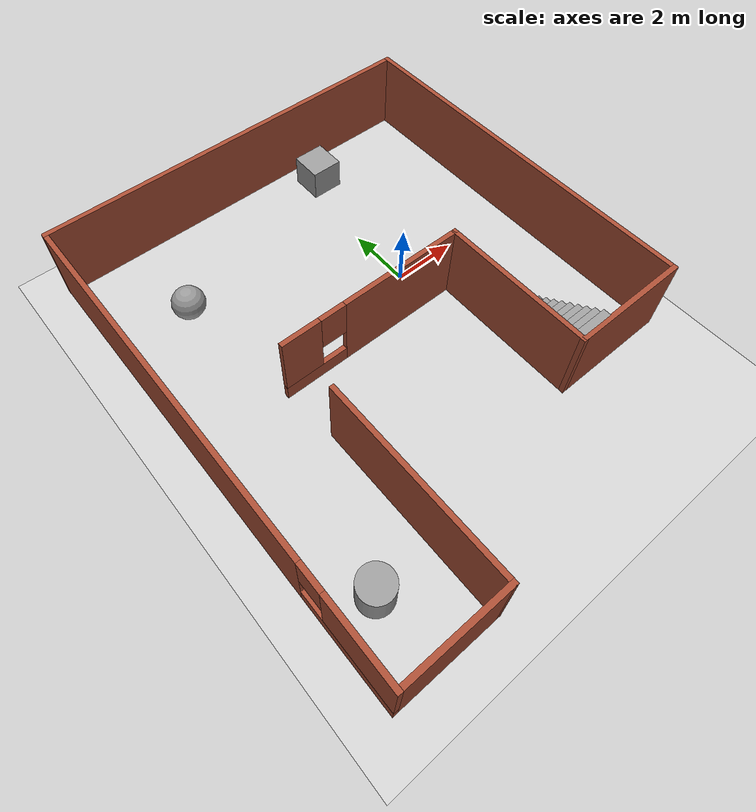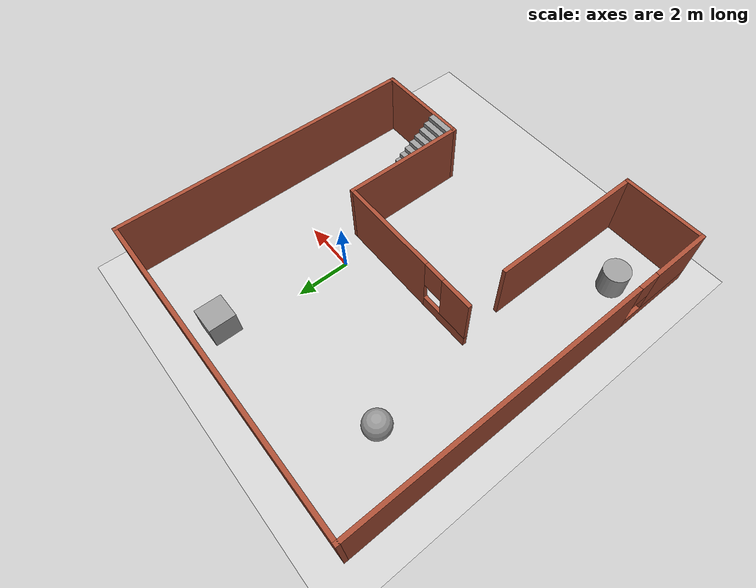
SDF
<sdf version="1.7">
 <world name="default">
  <light name="sun" type="directional">
   <pose>0 0 10 0 -0 0</pose>
   <diffuse>0.8 0.8 0.8 1</diffuse>
   <specular>0.2 0.2 0.2 1</specular>
   <attenuation>
    <range>1000</range>
    <constant>0.9</constant>
    <linear>0.01</linear>
    <quadratic>0.001</quadratic>
   </attenuation>
   <direction>-0.5 0.1 -0.9</direction>
   <spot><inner_angle>0</inner_angle><outer_angle>0</outer_angle><falloff>0</falloff></spot>
  </light>
  <model name="ground_plane">
   <static>1</static>
   <link name="link">
    <collision name="collision">
     <geometry><plane><normal>0 0 1</normal><size>100 100</size></plane></geometry>
     <surface><friction><ode><mu>100</mu><mu2>50</mu2></ode></friction></surface>
    </collision>
    <visual name="visual">
     <cast_shadows>0</cast_shadows>
     <geometry><plane><normal>0 0 1</normal><size>100 100</size></plane></geometry>
     <material>
      <script><uri>file://media/materials/scripts/gazebo.material</uri><name>Gazebo/Grey</name></script>
     </material>
    </visual>
   </link>
  </model>
  <gravity>0 0 -9.8</gravity>
  <magnetic_field>6e-06 2.3e-05 -4.2e-05</magnetic_field>
  <atmosphere type="adiabatic"/>
  <physics type="ode">
   <max_step_size>0.001</max_step_size>
   <real_time_factor>1</real_time_factor>
   <real_time_update_rate>1000</real_time_update_rate>
  </physics>
  <scene><ambient>0.4 0.4 0.4 1</ambient><background>0.7 0.7 0.7 1</background><shadows>1</shadows></scene>
  <audio><device>default</device></audio>
  <spherical_coordinates>
   <surface_model>EARTH_WGS84</surface_model>
   <latitude_deg>0</latitude_deg>
   <longitude_deg>0</longitude_deg>
   <elevation>0</elevation>
   <heading_deg>0</heading_deg>
  </spherical_coordinates>
  <model name="demo1_world">
   <pose>-1.75891 -1.44659 0 0 -0 0</pose>
   <link name="Stairs_0">
    <visual name="Stairs_0_Visual_0">
     <pose>3.14707 -0.863683 0.083333 0 -0 0</pose>
     <geometry><box><size>1 0.233333 0.166667</size></box></geometry>
     <material>
      <script><uri>file://media/materials/scripts/gazebo.material</uri><name>Gazebo/Grey</name></script>
      <ambient>1 1 1 1</ambient>
     </material>
     <meta><layer>0</layer></meta>
    </visual>
    <collision name="Stairs_0_Collision_0">
     <geometry><box><size>1 0.233333 0.166667</size></box></geometry>
     <pose>3.14707 -0.863683 0.083333 0 -0 0</pose>
    </collision>
    <visual name="Stairs_0_Visual_1">
     <pose>3.14707 -1.09702 0.25 0 -0 0</pose>
     <geometry><box><size>1 0.233333 0.166667</size></box></geometry>
     <material>
      <script><uri>file://media/materials/scripts/gazebo.material</uri><name>Gazebo/Grey</name></script>
      <ambient>1 1 1 1</ambient>
     </material>
     <meta><layer>0</layer></meta>
    </visual>
    <collision name="Stairs_0_Collision_1">
     <geometry><box><size>1 0.233333 0.166667</size></box></geometry>
     <pose>3.14707 -1.09702 0.25 0 -0 0</pose>
    </collision>
    <visual name="Stairs_0_Visual_2">
     <pose>3.14707 -1.33035 0.416667 0 -0 0</pose>
     <geometry><box><size>1 0.233333 0.166667</size></box></geometry>
     <material>
      <script><uri>file://media/materials/scripts/gazebo.material</uri><name>Gazebo/Grey</name></script>
      <ambient>1 1 1 1</ambient>
     </material>
     <meta><layer>0</layer></meta>
    </visual>
    <collision name="Stairs_0_Collision_2">
     <geometry><box><size>1 0.233333 0.166667</size></box></geometry>
     <pose>3.14707 -1.33035 0.416667 0 -0 0</pose>
    </collision>
    <visual name="Stairs_0_Visual_3">
     <pose>3.14707 -1.56368 0.583333 0 -0 0</pose>
     <geometry><box><size>1 0.233333 0.166667</size></box></geometry>
     <material>
      <script><uri>file://media/materials/scripts/gazebo.material</uri><name>Gazebo/Grey</name></script>
      <ambient>1 1 1 1</ambient>
     </material>
     <meta><layer>0</layer></meta>
    </visual>
    <collision name="Stairs_0_Collision_3">
     <geometry><box><size>1 0.233333 0.166667</size></box></geometry>
     <pose>3.14707 -1.56368 0.583333 0 -0 0</pose>
    </collision>
    <visual name="Stairs_0_Visual_4">
     <pose>3.14707 -1.79702 0.75 0 -0 0</pose>
     <geometry><box><size>1 0.233333 0.166667</size></box></geometry>
     <material>
      <script><uri>file://media/materials/scripts/gazebo.material</uri><name>Gazebo/Grey</name></script>
      <ambient>1 1 1 1</ambient>
     </material>
     <meta><layer>0</layer></meta>
    </visual>
    <collision name="Stairs_0_Collision_4">
     <geometry><box><size>1 0.233333 0.166667</size></box></geometry>
     <pose>3.14707 -1.79702 0.75 0 -0 0</pose>
    </collision>
    <visual name="Stairs_0_Visual_5">
     <pose>3.14707 -2.03035 0.916667 0 -0 0</pose>
     <geometry><box><size>1 0.233333 0.166667</size></box></geometry>
     <material>
      <script><uri>file://media/materials/scripts/gazebo.material</uri><name>Gazebo/Grey</name></script>
      <ambient>1 1 1 1</ambient>
     </material>
     <meta><layer>0</layer></meta>
    </visual>
    <collision name="Stairs_0_Collision_5">
     <geometry><box><size>1 0.233333 0.166667</size></box></geometry>
     <pose>3.14707 -2.03035 0.916667 0 -0 0</pose>
    </collision>
    <visual name="Stairs_0_Visual_6">
     <pose>3.14707 -2.26368 1.08333 0 -0 0</pose>
     <geometry><box><size>1 0.233333 0.166667</size></box></geometry>
     <material>
      <script><uri>file://media/materials/scripts/gazebo.material</uri><name>Gazebo/Grey</name></script>
      <ambient>1 1 1 1</ambient>
     </material>
     <meta><layer>0</layer></meta>
    </visual>
    <collision name="Stairs_0_Collision_6">
     <geometry><box><size>1 0.233333 0.166667</size></box></geometry>
     <pose>3.14707 -2.26368 1.08333 0 -0 0</pose>
    </collision>
    <visual name="Stairs_0_Visual_7">
     <pose>3.14707 -2.49702 1.25 0 -0 0</pose>
     <geometry><box><size>1 0.233333 0.166667</size></box></geometry>
     <material>
      <script><uri>file://media/materials/scripts/gazebo.material</uri><name>Gazebo/Grey</name></script>
      <ambient>1 1 1 1</ambient>
     </material>
     <meta><layer>0</layer></meta>
    </visual>
    <collision name="Stairs_0_Collision_7">
     <geometry><box><size>1 0.233333 0.166667</size></box></geometry>
     <pose>3.14707 -2.49702 1.25 0 -0 0</pose>
    </collision>
    <visual name="Stairs_0_Visual_8">
     <pose>3.14707 -2.73035 1.41667 0 -0 0</pose>
     <geometry><box><size>1 0.233333 0.166667</size></box></geometry>
     <material>
      <script><uri>file://media/materials/scripts/gazebo.material</uri><name>Gazebo/Grey</name></script>
      <ambient>1 1 1 1</ambient>
     </material>
     <meta><layer>0</layer></meta>
    </visual>
    <collision name="Stairs_0_Collision_8">
     <geometry><box><size>1 0.233333 0.166667</size></box></geometry>
     <pose>3.14707 -2.73035 1.41667 0 -0 0</pose>
    </collision>
    <visual name="Stairs_0_Visual_9">
     <pose>3.14707 -2.96368 1.58333 0 -0 0</pose>
     <geometry><box><size>1 0.233333 0.166667</size></box></geometry>
     <material>
      <script><uri>file://media/materials/scripts/gazebo.material</uri><name>Gazebo/Grey</name></script>
      <ambient>1 1 1 1</ambient>
     </material>
     <meta><layer>0</layer></meta>
    </visual>
    <collision name="Stairs_0_Collision_9">
     <geometry><box><size>1 0.233333 0.166667</size></box></geometry>
     <pose>3.14707 -2.96368 1.58333 0 -0 0</pose>
    </collision>
    <visual name="Stairs_0_Visual_10">
     <pose>3.14707 -3.19702 1.75 0 -0 0</pose>
     <geometry><box><size>1 0.233333 0.166667</size></box></geometry>
     <material>
      <script><uri>file://media/materials/scripts/gazebo.material</uri><name>Gazebo/Grey</name></script>
      <ambient>1 1 1 1</ambient>
     </material>
     <meta><layer>0</layer></meta>
    </visual>
    <collision name="Stairs_0_Collision_10">
     <geometry><box><size>1 0.233333 0.166667</size></box></geometry>
     <pose>3.14707 -3.19702 1.75 0 -0 0</pose>
    </collision>
    <visual name="Stairs_0_Visual_11">
     <pose>3.14707 -3.43035 1.91667 0 -0 0</pose>
     <geometry><box><size>1 0.233333 0.166667</size></box></geometry>
     <material>
      <script><uri>file://media/materials/scripts/gazebo.material</uri><name>Gazebo/Grey</name></script>
      <ambient>1 1 1 1</ambient>
     </material>
     <meta><layer>0</layer></meta>
    </visual>
    <collision name="Stairs_0_Collision_11">
     <geometry><box><size>1 0.233333 0.166667</size></box></geometry>
     <pose>3.14707 -3.43035 1.91667 0 -0 0</pose>
    </collision>
    <visual name="Stairs_0_Visual_12">
     <pose>3.14707 -3.66368 2.08333 0 -0 0</pose>
     <geometry><box><size>1 0.233333 0.166667</size></box></geometry>
     <material>
      <script><uri>file://media/materials/scripts/gazebo.material</uri><name>Gazebo/Grey</name></script>
      <ambient>1 1 1 1</ambient>
     </material>
     <meta><layer>0</layer></meta>
    </visual>
    <collision name="Stairs_0_Collision_12">
     <geometry><box><size>1 0.233333 0.166667</size></box></geometry>
     <pose>3.14707 -3.66368 2.08333 0 -0 0</pose>
    </collision>
    <visual name="Stairs_0_Visual_13">
     <pose>3.14707 -3.89702 2.25 0 -0 0</pose>
     <geometry><box><size>1 0.233333 0.166667</size></box></geometry>
     <material>
      <script><uri>file://media/materials/scripts/gazebo.material</uri><name>Gazebo/Grey</name></script>
      <ambient>1 1 1 1</ambient>
     </material>
     <meta><layer>0</layer></meta>
    </visual>
    <collision name="Stairs_0_Collision_13">
     <geometry><box><size>1 0.233333 0.166667</size></box></geometry>
     <pose>3.14707 -3.89702 2.25 0 -0 0</pose>
    </collision>
    <visual name="Stairs_0_Visual_14">
     <pose>3.14707 -4.13035 2.41667 0 -0 0</pose>
     <geometry><box><size>1 0.233333 0.166667</size></box></geometry>
     <material>
      <script><uri>file://media/materials/scripts/gazebo.material</uri><name>Gazebo/Grey</name></script>
      <ambient>1 1 1 1</ambient>
     </material>
     <meta><layer>0</layer></meta>
    </visual>
    <collision name="Stairs_0_Collision_14">
     <geometry><box><size>1 0.233333 0.166667</size></box></geometry>
     <pose>3.14707 -4.13035 2.41667 0 -0 0</pose>
    </collision>
   </link>
   <link name="Wall_27">
    <collision name="Wall_27_Collision">
     <geometry><box><size>12.5 0.15 2.5</size></box></geometry>
     <pose>0 0 1.25 0 -0 0</pose>
    </collision>
    <visual name="Wall_27_Visual">
     <pose>0 0 1.25 0 -0 0</pose>
     <geometry><box><size>12.5 0.15 2.5</size></box></geometry>
     <material>
      <script><uri>file://media/materials/scripts/gazebo.material</uri><name>Gazebo/Bricks</name></script>
      <ambient>1 1 1 1</ambient>
     </material>
     <meta><layer>0</layer></meta>
    </visual>
    <pose>0 7.3 0 0 -0 0</pose>
   </link>
   <link name="Wall_28">
    <collision name="Wall_28_Collision">
     <geometry><box><size>11.75 0.15 2.5</size></box></geometry>
     <pose>0 0 1.25 0 -0 0</pose>
    </collision>
    <visual name="Wall_28_Visual">
     <pose>0 0 1.25 0 -0 0</pose>
     <geometry><box><size>11.75 0.15 2.5</size></box></geometry>
     <material>
      <script><uri>file://media/materials/scripts/gazebo.material</uri><name>Gazebo/Bricks</name></script>
      <ambient>1 1 1 1</ambient>
     </material>
     <meta><layer>0</layer></meta>
    </visual>
    <pose>6.175 1.5 0 0 -0 -1.5708</pose>
   </link>
   <link name="Wall_29">
    <collision name="Wall_29_Collision">
     <geometry><box><size>3.75 0.15 2.5</size></box></geometry>
     <pose>0 0 1.25 0 -0 0</pose>
    </collision>
    <visual name="Wall_29_Visual">
     <pose>0 0 1.25 0 -0 0</pose>
     <geometry><box><size>3.75 0.15 2.5</size></box></geometry>
     <material>
      <script><uri>file://media/materials/scripts/gazebo.material</uri><name>Gazebo/Bricks</name></script>
      <ambient>1 1 1 1</ambient>
     </material>
     <meta><layer>0</layer></meta>
    </visual>
    <pose>4.375 -4.3 0 0 -0 3.14159</pose>
   </link>
   <link name="Wall_30">
    <collision name="Wall_30_Collision">
     <geometry><box><size>4.75 0.15 2.5</size></box></geometry>
     <pose>0 0 1.25 0 -0 0</pose>
    </collision>
    <visual name="Wall_30_Visual">
     <pose>0 0 1.25 0 -0 0</pose>
     <geometry><box><size>4.75 0.15 2.5</size></box></geometry>
     <material>
      <script><uri>file://media/materials/scripts/gazebo.material</uri><name>Gazebo/Bricks</name></script>
      <ambient>1 1 1 1</ambient>
     </material>
     <meta><layer>0</layer></meta>
    </visual>
    <pose>2.575 -2 0 0 -0 1.5708</pose>
   </link>
   <link name="Wall_31">
    <pose>-0.35 0.3 0 0 -0 3.14159</pose>
    <visual name="Wall_31_Visual_0">
     <pose>-1.01462 0 1.25 0 -0 0</pose>
     <geometry><box><size>3.97077 0.15 2.5</size></box></geometry>
     <material>
      <script><uri>file://media/materials/scripts/gazebo.material</uri><name>Gazebo/Bricks</name></script>
      <ambient>1 1 1 1</ambient>
     </material>
     <meta><layer>0</layer></meta>
    </visual>
    <collision name="Wall_31_Collision_0">
     <geometry><box><size>3.97077 0.15 2.5</size></box></geometry>
     <pose>-1.01462 0 1.25 0 -0 0</pose>
    </collision>
    <visual name="Wall_31_Visual_1">
     <pose>1.98538 0 0.25 0 -0 0</pose>
     <geometry><box><size>2.02923 0.15 0.5</size></box></geometry>
     <material>
      <script><uri>file://media/materials/scripts/gazebo.material</uri><name>Gazebo/Bricks</name></script>
      <ambient>1 1 1 1</ambient>
     </material>
     <meta><layer>0</layer></meta>
    </visual>
    <collision name="Wall_31_Collision_1">
     <geometry><box><size>2.02923 0.15 0.5</size></box></geometry>
     <pose>1.98538 0 0.25 0 -0 0</pose>
    </collision>
    <visual name="Wall_31_Visual_2">
     <pose>2.38538 0 1.5 0 -0 0</pose>
     <geometry><box><size>1.22923 0.15 2</size></box></geometry>
     <material>
      <script><uri>file://media/materials/scripts/gazebo.material</uri><name>Gazebo/Bricks</name></script>
      <ambient>1 1 1 1</ambient>
     </material>
     <meta><layer>0</layer></meta>
    </visual>
    <collision name="Wall_31_Collision_2">
     <geometry><box><size>1.22923 0.15 2</size></box></geometry>
     <pose>2.38538 0 1.5 0 -0 0</pose>
    </collision>
    <visual name="Wall_31_Visual_3">
     <pose>1.37077 0 1.9 0 -0 0</pose>
     <geometry><box><size>0.8 0.15 1.2</size></box></geometry>
     <material>
      <script><uri>file://media/materials/scripts/gazebo.material</uri><name>Gazebo/Bricks</name></script>
      <ambient>1 1 1 1</ambient>
     </material>
     <meta><layer>0</layer></meta>
    </visual>
    <collision name="Wall_31_Collision_3">
     <geometry><box><size>0.8 0.15 1.2</size></box></geometry>
     <pose>1.37077 0 1.9 0 -0 0</pose>
    </collision>
   </link>
   <link name="Wall_33">
    <pose>-6.175 -0 0 0 -0 -1.5708</pose>
    <visual name="Wall_33_Visual_0">
     <pose>-1.58828 0 1.25 0 -0 0</pose>
     <geometry><box><size>11.5734 0.15 2.5</size></box></geometry>
     <material>
      <script><uri>file://media/materials/scripts/gazebo.material</uri><name>Gazebo/Bricks</name></script>
      <ambient>1 1 1 1</ambient>
     </material>
     <meta><layer>0</layer></meta>
    </visual>
    <collision name="Wall_33_Collision_0">
     <geometry><box><size>11.5734 0.15 2.5</size></box></geometry>
     <pose>-1.58828 0 1.25 0 -0 0</pose>
    </collision>
    <visual name="Wall_33_Visual_1">
     <pose>5.78672 0 0.25 0 -0 0</pose>
     <geometry><box><size>3.17657 0.15 0.5</size></box></geometry>
     <material>
      <script><uri>file://media/materials/scripts/gazebo.material</uri><name>Gazebo/Bricks</name></script>
      <ambient>1 1 1 1</ambient>
     </material>
     <meta><layer>0</layer></meta>
    </visual>
    <collision name="Wall_33_Collision_1">
     <geometry><box><size>3.17657 0.15 0.5</size></box></geometry>
     <pose>5.78672 0 0.25 0 -0 0</pose>
    </collision>
    <visual name="Wall_33_Visual_2">
     <pose>6.18672 0 1.5 0 -0 0</pose>
     <geometry><box><size>2.37657 0.15 2</size></box></geometry>
     <material>
      <script><uri>file://media/materials/scripts/gazebo.material</uri><name>Gazebo/Bricks</name></script>
      <ambient>1 1 1 1</ambient>
     </material>
     <meta><layer>0</layer></meta>
    </visual>
    <collision name="Wall_33_Collision_2">
     <geometry><box><size>2.37657 0.15 2</size></box></geometry>
     <pose>6.18672 0 1.5 0 -0 0</pose>
    </collision>
    <visual name="Wall_33_Visual_3">
     <pose>4.59843 0 1.9 0 -0 0</pose>
     <geometry><box><size>0.8 0.15 1.2</size></box></geometry>
     <material>
      <script><uri>file://media/materials/scripts/gazebo.material</uri><name>Gazebo/Bricks</name></script>
      <ambient>1 1 1 1</ambient>
     </material>
     <meta><layer>0</layer></meta>
    </visual>
    <collision name="Wall_33_Collision_3">
     <geometry><box><size>0.8 0.15 1.2</size></box></geometry>
     <pose>4.59843 0 1.9 0 -0 0</pose>
    </collision>
   </link>
   <link name="Wall_34">
    <collision name="Wall_34_Collision">
     <geometry><box><size>3.25 0.15 2.5</size></box></geometry>
     <pose>0 0 1.25 0 -0 0</pose>
    </collision>
    <visual name="Wall_34_Visual">
     <pose>0 0 1.25 0 -0 0</pose>
     <geometry><box><size>3.25 0.15 2.5</size></box></geometry>
     <material>
      <script><uri>file://media/materials/scripts/gazebo.material</uri><name>Gazebo/Bricks</name></script>
      <ambient>1 1 1 1</ambient>
     </material>
     <meta><layer>0</layer></meta>
    </visual>
    <pose>-4.625 -7.3 0 0 -0 0</pose>
   </link>
   <link name="Wall_35">
    <collision name="Wall_35_Collision">
     <geometry><box><size>6 0.15 2.5</size></box></geometry>
     <pose>0 0 1.25 0 -0 0</pose>
    </collision>
    <visual name="Wall_35_Visual">
     <pose>0 0 1.25 0 -0 0</pose>
     <geometry><box><size>6 0.15 2.5</size></box></geometry>
     <material>
      <script><uri>file://media/materials/scripts/gazebo.material</uri><name>Gazebo/Bricks</name></script>
      <ambient>1 1 1 1</ambient>
     </material>
     <meta><layer>0</layer></meta>
    </visual>
    <pose>-3.075 -4.375 0 0 -0 1.5708</pose>
   </link>
   <static>1</static>
  </model>
  <model name="unit_sphere">
   <pose>-5.6045 2.8944 0.5 0 -0 0</pose>
   <link name="link">
    <inertial>
     <mass>1</mass>
     <inertia><ixx>0.1</ixx><ixy>0</ixy><ixz>0</ixz><iyy>0.1</iyy><iyz>0</iyz><izz>0.1</izz></inertia>
    </inertial>
    <collision name="collision"><geometry><sphere><radius>0.5</radius></sphere></geometry></collision>
    <visual name="visual">
     <geometry><sphere><radius>0.5</radius></sphere></geometry>
     <material>
      <script><name>Gazebo/Grey</name><uri>file://media/materials/scripts/gazebo.material</uri></script>
     </material>
    </visual>
   </link>
  </model>
  <model name="unit_box">
   <pose>0.57084 4.7816 0.499995 -1e-05 -0 0</pose>
   <link name="link">
    <inertial>
     <mass>1</mass>
     <inertia>
      <ixx>0.166667</ixx>
      <ixy>0</ixy>
      <ixz>0</ixz>
      <iyy>0.166667</iyy>
      <iyz>0</iyz>
      <izz>0.166667</izz>
     </inertia>
    </inertial>
    <collision name="collision"><geometry><box><size>1 1 1</size></box></geometry></collision>
    <visual name="visual">
     <geometry><box><size>1 1 1</size></box></geometry>
     <material>
      <script><name>Gazebo/Grey</name><uri>file://media/materials/scripts/gazebo.material</uri></script>
     </material>
    </visual>
   </link>
  </model>
  <model name="unit_cylinder">
   <pose>-6.67018 -6.68957 0.499997 3e-06 4e-06 -0</pose>
   <link name="link">
    <inertial>
     <mass>1</mass>
     <inertia><ixx>0.145833</ixx><ixy>0</ixy><ixz>0</ixz><iyy>0.145833</iyy><iyz>0</iyz><izz>0.125</izz></inertia>
    </inertial>
    <collision name="collision">
     <geometry><cylinder><radius>0.5</radius><length>1</length></cylinder></geometry>
    </collision>
    <visual name="visual">
     <geometry><cylinder><radius>0.5</radius><length>1</length></cylinder></geometry>
     <material>
      <script><name>Gazebo/Grey</name><uri>file://media/materials/scripts/gazebo.material</uri></script>
     </material>
    </visual>
   </link>
  </model>
 </world>
</sdf>
